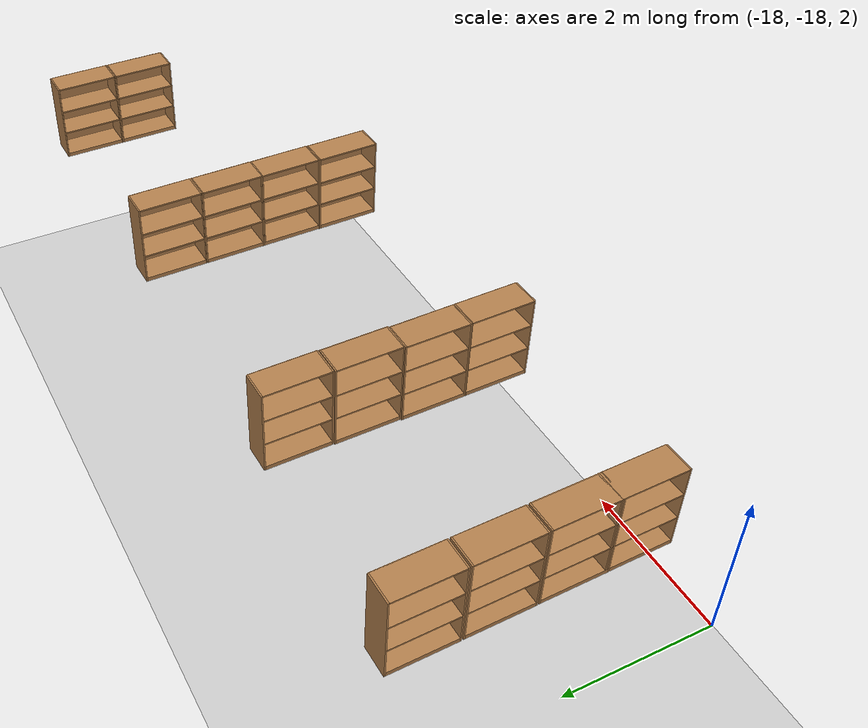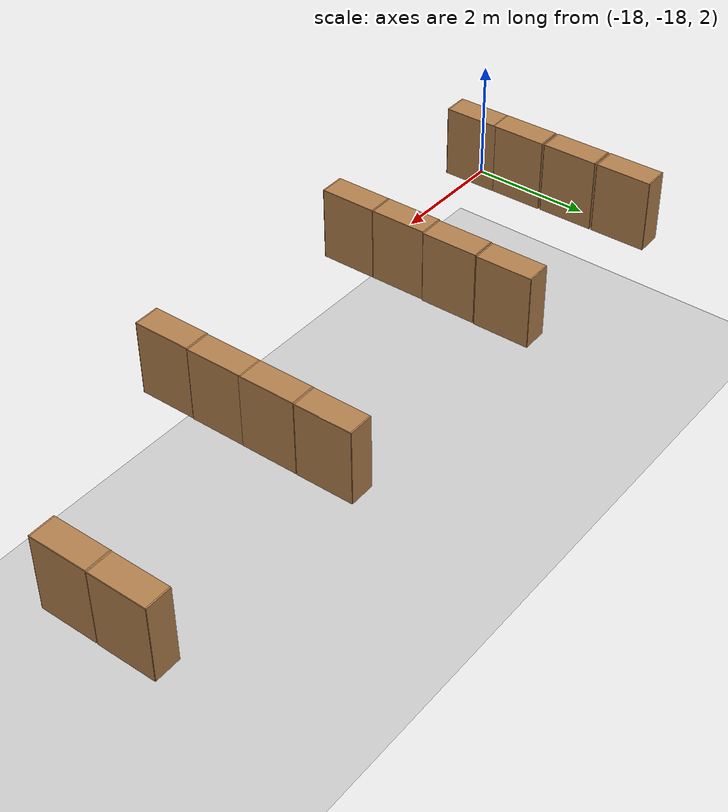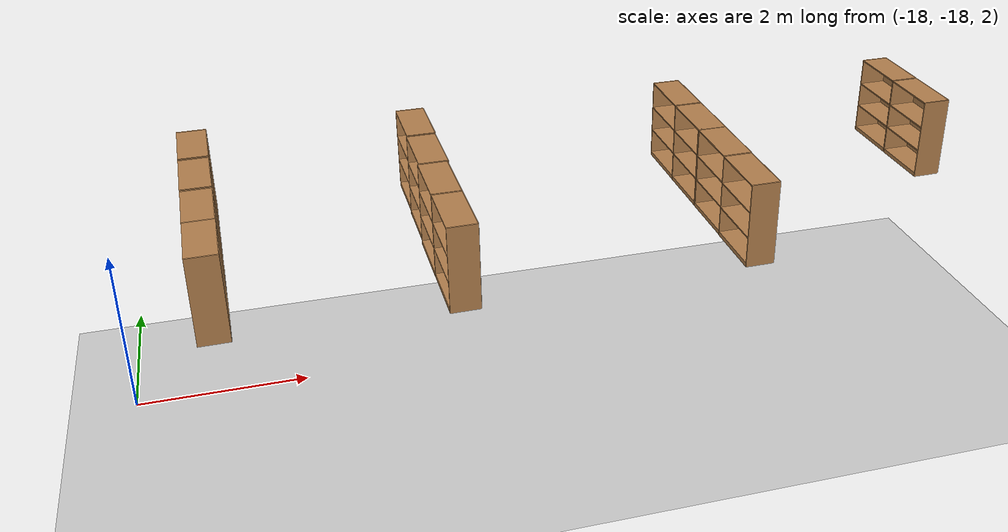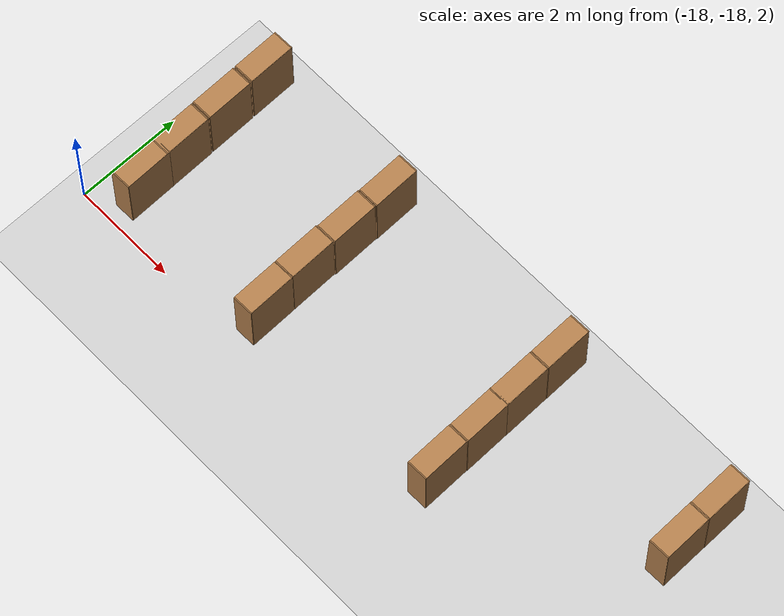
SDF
<sdf version="1.6">
 <world name="default">
  <model name="ground_plane">
   <static>1</static>
   <link name="link">
    <collision name="collision">
     <geometry><plane><normal>0 0 1</normal><size>100 100</size></plane></geometry>
     <surface><friction><ode><mu>100</mu><mu2>50</mu2></ode></friction></surface>
    </collision>
    <visual name="visual">
     <cast_shadows>0</cast_shadows>
     <geometry><plane><normal>0 0 1</normal><size>100 100</size></plane></geometry>
     <material>
      <script><uri>file://media/materials/scripts/gazebo.material</uri><name>Gazebo/Grey</name></script>
     </material>
    </visual>
   </link>
  </model>
  <model name="bookshelf_clone_clone">
   <static>1</static>
   <link name="link">
    <inertial><mass>1</mass></inertial>
    <collision name="back">
     <pose>0 0.005 0.6 0 -0 0</pose>
     <geometry><box><size>0.9 0.01 1.2</size></box></geometry>
    </collision>
    <visual name="visual1">
     <pose>0 0.005 0.6 0 -0 0</pose>
     <geometry><box><size>0.9 0.01 1.2</size></box></geometry>
     <material>
      <script><uri>file://media/materials/scripts/gazebo.material</uri><name>Gazebo/Wood</name></script>
     </material>
    </visual>
    <collision name="left_side">
     <pose>0.45 -0.195 0.6 0 -0 0</pose>
     <geometry><box><size>0.02 0.4 1.2</size></box></geometry>
    </collision>
    <visual name="visual2">
     <pose>0.45 -0.195 0.6 0 -0 0</pose>
     <geometry><box><size>0.02 0.4 1.2</size></box></geometry>
     <material>
      <script><uri>file://media/materials/scripts/gazebo.material</uri><name>Gazebo/Wood</name></script>
     </material>
    </visual>
    <collision name="right_side">
     <pose>-0.45 -0.195 0.6 0 -0 0</pose>
     <geometry><box><size>0.02 0.4 1.2</size></box></geometry>
    </collision>
    <visual name="visual3">
     <pose>-0.45 -0.195 0.6 0 -0 0</pose>
     <geometry><box><size>0.02 0.4 1.2</size></box></geometry>
     <material>
      <script><uri>file://media/materials/scripts/gazebo.material</uri><name>Gazebo/Wood</name></script>
     </material>
    </visual>
    <collision name="bottom">
     <pose>0 -0.195 0.03 0 -0 0</pose>
     <geometry><box><size>0.88 0.4 0.06</size></box></geometry>
    </collision>
    <visual name="visual4">
     <pose>0 -0.195 0.03 0 -0 0</pose>
     <geometry><box><size>0.88 0.4 0.06</size></box></geometry>
     <material>
      <script><uri>file://media/materials/scripts/gazebo.material</uri><name>Gazebo/Wood</name></script>
     </material>
    </visual>
    <collision name="top">
     <pose>0 -0.195 1.19 0 -0 0</pose>
     <geometry><box><size>0.88 0.4 0.02</size></box></geometry>
    </collision>
    <visual name="visual5">
     <pose>0 -0.195 1.19 0 -0 0</pose>
     <geometry><box><size>0.88 0.4 0.02</size></box></geometry>
     <material>
      <script><uri>file://media/materials/scripts/gazebo.material</uri><name>Gazebo/Wood</name></script>
     </material>
    </visual>
    <collision name="low_shelf">
     <pose>0 -0.195 0.43 0 -0 0</pose>
     <geometry><box><size>0.88 0.4 0.02</size></box></geometry>
    </collision>
    <visual name="visual6">
     <pose>0 -0.195 0.43 0 -0 0</pose>
     <geometry><box><size>0.88 0.4 0.02</size></box></geometry>
     <material>
      <script><uri>file://media/materials/scripts/gazebo.material</uri><name>Gazebo/Wood</name></script>
     </material>
    </visual>
    <collision name="high_shelf">
     <pose>0 -0.195 0.8 0 -0 0</pose>
     <geometry><box><size>0.88 0.4 0.02</size></box></geometry>
    </collision>
    <visual name="visual7">
     <pose>0 -0.195 0.8 0 -0 0</pose>
     <geometry><box><size>0.88 0.4 0.02</size></box></geometry>
     <material>
      <script><uri>file://media/materials/scripts/gazebo.material</uri><name>Gazebo/Wood</name></script>
     </material>
    </visual>
    <enable_wind>1</enable_wind>
   </link>
   <pose>-13.8416 -14.7855 2.61718 0 0 -1.55468</pose>
   <enable_wind>1</enable_wind>
  </model>
  <model name="bookshelf_clone_clone_clone">
   <static>1</static>
   <link name="link">
    <inertial><mass>1</mass></inertial>
    <collision name="back">
     <pose>0 0.005 0.6 0 -0 0</pose>
     <geometry><box><size>0.9 0.01 1.2</size></box></geometry>
    </collision>
    <visual name="visual1">
     <pose>0 0.005 0.6 0 -0 0</pose>
     <geometry><box><size>0.9 0.01 1.2</size></box></geometry>
     <material>
      <script><uri>file://media/materials/scripts/gazebo.material</uri><name>Gazebo/Wood</name></script>
     </material>
    </visual>
    <collision name="left_side">
     <pose>0.45 -0.195 0.6 0 -0 0</pose>
     <geometry><box><size>0.02 0.4 1.2</size></box></geometry>
    </collision>
    <visual name="visual2">
     <pose>0.45 -0.195 0.6 0 -0 0</pose>
     <geometry><box><size>0.02 0.4 1.2</size></box></geometry>
     <material>
      <script><uri>file://media/materials/scripts/gazebo.material</uri><name>Gazebo/Wood</name></script>
     </material>
    </visual>
    <collision name="right_side">
     <pose>-0.45 -0.195 0.6 0 -0 0</pose>
     <geometry><box><size>0.02 0.4 1.2</size></box></geometry>
    </collision>
    <visual name="visual3">
     <pose>-0.45 -0.195 0.6 0 -0 0</pose>
     <geometry><box><size>0.02 0.4 1.2</size></box></geometry>
     <material>
      <script><uri>file://media/materials/scripts/gazebo.material</uri><name>Gazebo/Wood</name></script>
     </material>
    </visual>
    <collision name="bottom">
     <pose>0 -0.195 0.03 0 -0 0</pose>
     <geometry><box><size>0.88 0.4 0.06</size></box></geometry>
    </collision>
    <visual name="visual4">
     <pose>0 -0.195 0.03 0 -0 0</pose>
     <geometry><box><size>0.88 0.4 0.06</size></box></geometry>
     <material>
      <script><uri>file://media/materials/scripts/gazebo.material</uri><name>Gazebo/Wood</name></script>
     </material>
    </visual>
    <collision name="top">
     <pose>0 -0.195 1.19 0 -0 0</pose>
     <geometry><box><size>0.88 0.4 0.02</size></box></geometry>
    </collision>
    <visual name="visual5">
     <pose>0 -0.195 1.19 0 -0 0</pose>
     <geometry><box><size>0.88 0.4 0.02</size></box></geometry>
     <material>
      <script><uri>file://media/materials/scripts/gazebo.material</uri><name>Gazebo/Wood</name></script>
     </material>
    </visual>
    <collision name="low_shelf">
     <pose>0 -0.195 0.43 0 -0 0</pose>
     <geometry><box><size>0.88 0.4 0.02</size></box></geometry>
    </collision>
    <visual name="visual6">
     <pose>0 -0.195 0.43 0 -0 0</pose>
     <geometry><box><size>0.88 0.4 0.02</size></box></geometry>
     <material>
      <script><uri>file://media/materials/scripts/gazebo.material</uri><name>Gazebo/Wood</name></script>
     </material>
    </visual>
    <collision name="high_shelf">
     <pose>0 -0.195 0.8 0 -0 0</pose>
     <geometry><box><size>0.88 0.4 0.02</size></box></geometry>
    </collision>
    <visual name="visual7">
     <pose>0 -0.195 0.8 0 -0 0</pose>
     <geometry><box><size>0.88 0.4 0.02</size></box></geometry>
     <material>
      <script><uri>file://media/materials/scripts/gazebo.material</uri><name>Gazebo/Wood</name></script>
     </material>
    </visual>
    <enable_wind>1</enable_wind>
   </link>
   <pose>-13.8378 -15.7137 2.61718 0 0 -1.55468</pose>
   <enable_wind>1</enable_wind>
  </model>
  <model name="bookshelf_clone_clone_clone_0">
   <static>1</static>
   <link name="link">
    <inertial><mass>1</mass></inertial>
    <collision name="back">
     <pose>0 0.005 0.6 0 -0 0</pose>
     <geometry><box><size>0.9 0.01 1.2</size></box></geometry>
    </collision>
    <visual name="visual1">
     <pose>0 0.005 0.6 0 -0 0</pose>
     <geometry><box><size>0.9 0.01 1.2</size></box></geometry>
     <material>
      <script><uri>file://media/materials/scripts/gazebo.material</uri><name>Gazebo/Wood</name></script>
     </material>
    </visual>
    <collision name="left_side">
     <pose>0.45 -0.195 0.6 0 -0 0</pose>
     <geometry><box><size>0.02 0.4 1.2</size></box></geometry>
    </collision>
    <visual name="visual2">
     <pose>0.45 -0.195 0.6 0 -0 0</pose>
     <geometry><box><size>0.02 0.4 1.2</size></box></geometry>
     <material>
      <script><uri>file://media/materials/scripts/gazebo.material</uri><name>Gazebo/Wood</name></script>
     </material>
    </visual>
    <collision name="right_side">
     <pose>-0.45 -0.195 0.6 0 -0 0</pose>
     <geometry><box><size>0.02 0.4 1.2</size></box></geometry>
    </collision>
    <visual name="visual3">
     <pose>-0.45 -0.195 0.6 0 -0 0</pose>
     <geometry><box><size>0.02 0.4 1.2</size></box></geometry>
     <material>
      <script><uri>file://media/materials/scripts/gazebo.material</uri><name>Gazebo/Wood</name></script>
     </material>
    </visual>
    <collision name="bottom">
     <pose>0 -0.195 0.03 0 -0 0</pose>
     <geometry><box><size>0.88 0.4 0.06</size></box></geometry>
    </collision>
    <visual name="visual4">
     <pose>0 -0.195 0.03 0 -0 0</pose>
     <geometry><box><size>0.88 0.4 0.06</size></box></geometry>
     <material>
      <script><uri>file://media/materials/scripts/gazebo.material</uri><name>Gazebo/Wood</name></script>
     </material>
    </visual>
    <collision name="top">
     <pose>0 -0.195 1.19 0 -0 0</pose>
     <geometry><box><size>0.88 0.4 0.02</size></box></geometry>
    </collision>
    <visual name="visual5">
     <pose>0 -0.195 1.19 0 -0 0</pose>
     <geometry><box><size>0.88 0.4 0.02</size></box></geometry>
     <material>
      <script><uri>file://media/materials/scripts/gazebo.material</uri><name>Gazebo/Wood</name></script>
     </material>
    </visual>
    <collision name="low_shelf">
     <pose>0 -0.195 0.43 0 -0 0</pose>
     <geometry><box><size>0.88 0.4 0.02</size></box></geometry>
    </collision>
    <visual name="visual6">
     <pose>0 -0.195 0.43 0 -0 0</pose>
     <geometry><box><size>0.88 0.4 0.02</size></box></geometry>
     <material>
      <script><uri>file://media/materials/scripts/gazebo.material</uri><name>Gazebo/Wood</name></script>
     </material>
    </visual>
    <collision name="high_shelf">
     <pose>0 -0.195 0.8 0 -0 0</pose>
     <geometry><box><size>0.88 0.4 0.02</size></box></geometry>
    </collision>
    <visual name="visual7">
     <pose>0 -0.195 0.8 0 -0 0</pose>
     <geometry><box><size>0.88 0.4 0.02</size></box></geometry>
     <material>
      <script><uri>file://media/materials/scripts/gazebo.material</uri><name>Gazebo/Wood</name></script>
     </material>
    </visual>
    <enable_wind>1</enable_wind>
   </link>
   <pose>-13.8408 -16.629 2.61718 0 0 -1.55468</pose>
   <enable_wind>1</enable_wind>
  </model>
  <model name="bookshelf_clone_clone_clone_1">
   <static>1</static>
   <link name="link">
    <inertial><mass>1</mass></inertial>
    <collision name="back">
     <pose>0 0.005 0.6 0 -0 0</pose>
     <geometry><box><size>0.9 0.01 1.2</size></box></geometry>
    </collision>
    <visual name="visual1">
     <pose>0 0.005 0.6 0 -0 0</pose>
     <geometry><box><size>0.9 0.01 1.2</size></box></geometry>
     <material>
      <script><uri>file://media/materials/scripts/gazebo.material</uri><name>Gazebo/Wood</name></script>
     </material>
    </visual>
    <collision name="left_side">
     <pose>0.45 -0.195 0.6 0 -0 0</pose>
     <geometry><box><size>0.02 0.4 1.2</size></box></geometry>
    </collision>
    <visual name="visual2">
     <pose>0.45 -0.195 0.6 0 -0 0</pose>
     <geometry><box><size>0.02 0.4 1.2</size></box></geometry>
     <material>
      <script><uri>file://media/materials/scripts/gazebo.material</uri><name>Gazebo/Wood</name></script>
     </material>
    </visual>
    <collision name="right_side">
     <pose>-0.45 -0.195 0.6 0 -0 0</pose>
     <geometry><box><size>0.02 0.4 1.2</size></box></geometry>
    </collision>
    <visual name="visual3">
     <pose>-0.45 -0.195 0.6 0 -0 0</pose>
     <geometry><box><size>0.02 0.4 1.2</size></box></geometry>
     <material>
      <script><uri>file://media/materials/scripts/gazebo.material</uri><name>Gazebo/Wood</name></script>
     </material>
    </visual>
    <collision name="bottom">
     <pose>0 -0.195 0.03 0 -0 0</pose>
     <geometry><box><size>0.88 0.4 0.06</size></box></geometry>
    </collision>
    <visual name="visual4">
     <pose>0 -0.195 0.03 0 -0 0</pose>
     <geometry><box><size>0.88 0.4 0.06</size></box></geometry>
     <material>
      <script><uri>file://media/materials/scripts/gazebo.material</uri><name>Gazebo/Wood</name></script>
     </material>
    </visual>
    <collision name="top">
     <pose>0 -0.195 1.19 0 -0 0</pose>
     <geometry><box><size>0.88 0.4 0.02</size></box></geometry>
    </collision>
    <visual name="visual5">
     <pose>0 -0.195 1.19 0 -0 0</pose>
     <geometry><box><size>0.88 0.4 0.02</size></box></geometry>
     <material>
      <script><uri>file://media/materials/scripts/gazebo.material</uri><name>Gazebo/Wood</name></script>
     </material>
    </visual>
    <collision name="low_shelf">
     <pose>0 -0.195 0.43 0 -0 0</pose>
     <geometry><box><size>0.88 0.4 0.02</size></box></geometry>
    </collision>
    <visual name="visual6">
     <pose>0 -0.195 0.43 0 -0 0</pose>
     <geometry><box><size>0.88 0.4 0.02</size></box></geometry>
     <material>
      <script><uri>file://media/materials/scripts/gazebo.material</uri><name>Gazebo/Wood</name></script>
     </material>
    </visual>
    <collision name="high_shelf">
     <pose>0 -0.195 0.8 0 -0 0</pose>
     <geometry><box><size>0.88 0.4 0.02</size></box></geometry>
    </collision>
    <visual name="visual7">
     <pose>0 -0.195 0.8 0 -0 0</pose>
     <geometry><box><size>0.88 0.4 0.02</size></box></geometry>
     <material>
      <script><uri>file://media/materials/scripts/gazebo.material</uri><name>Gazebo/Wood</name></script>
     </material>
    </visual>
    <enable_wind>1</enable_wind>
   </link>
   <pose>-13.825 -17.5402 2.61718 0 0 -1.55468</pose>
   <enable_wind>1</enable_wind>
  </model>
  <model name="bookshelf_clone_clone_clone_5">
   <static>1</static>
   <link name="link">
    <inertial><mass>1</mass></inertial>
    <collision name="back">
     <pose>0 0.005 0.6 0 -0 0</pose>
     <geometry><box><size>0.9 0.01 1.2</size></box></geometry>
    </collision>
    <visual name="visual1">
     <pose>0 0.005 0.6 0 -0 0</pose>
     <geometry><box><size>0.9 0.01 1.2</size></box></geometry>
     <material>
      <script><uri>file://media/materials/scripts/gazebo.material</uri><name>Gazebo/Wood</name></script>
     </material>
    </visual>
    <collision name="left_side">
     <pose>0.45 -0.195 0.6 0 -0 0</pose>
     <geometry><box><size>0.02 0.4 1.2</size></box></geometry>
    </collision>
    <visual name="visual2">
     <pose>0.45 -0.195 0.6 0 -0 0</pose>
     <geometry><box><size>0.02 0.4 1.2</size></box></geometry>
     <material>
      <script><uri>file://media/materials/scripts/gazebo.material</uri><name>Gazebo/Wood</name></script>
     </material>
    </visual>
    <collision name="right_side">
     <pose>-0.45 -0.195 0.6 0 -0 0</pose>
     <geometry><box><size>0.02 0.4 1.2</size></box></geometry>
    </collision>
    <visual name="visual3">
     <pose>-0.45 -0.195 0.6 0 -0 0</pose>
     <geometry><box><size>0.02 0.4 1.2</size></box></geometry>
     <material>
      <script><uri>file://media/materials/scripts/gazebo.material</uri><name>Gazebo/Wood</name></script>
     </material>
    </visual>
    <collision name="bottom">
     <pose>0 -0.195 0.03 0 -0 0</pose>
     <geometry><box><size>0.88 0.4 0.06</size></box></geometry>
    </collision>
    <visual name="visual4">
     <pose>0 -0.195 0.03 0 -0 0</pose>
     <geometry><box><size>0.88 0.4 0.06</size></box></geometry>
     <material>
      <script><uri>file://media/materials/scripts/gazebo.material</uri><name>Gazebo/Wood</name></script>
     </material>
    </visual>
    <collision name="top">
     <pose>0 -0.195 1.19 0 -0 0</pose>
     <geometry><box><size>0.88 0.4 0.02</size></box></geometry>
    </collision>
    <visual name="visual5">
     <pose>0 -0.195 1.19 0 -0 0</pose>
     <geometry><box><size>0.88 0.4 0.02</size></box></geometry>
     <material>
      <script><uri>file://media/materials/scripts/gazebo.material</uri><name>Gazebo/Wood</name></script>
     </material>
    </visual>
    <collision name="low_shelf">
     <pose>0 -0.195 0.43 0 -0 0</pose>
     <geometry><box><size>0.88 0.4 0.02</size></box></geometry>
    </collision>
    <visual name="visual6">
     <pose>0 -0.195 0.43 0 -0 0</pose>
     <geometry><box><size>0.88 0.4 0.02</size></box></geometry>
     <material>
      <script><uri>file://media/materials/scripts/gazebo.material</uri><name>Gazebo/Wood</name></script>
     </material>
    </visual>
    <collision name="high_shelf">
     <pose>0 -0.195 0.8 0 -0 0</pose>
     <geometry><box><size>0.88 0.4 0.02</size></box></geometry>
    </collision>
    <visual name="visual7">
     <pose>0 -0.195 0.8 0 -0 0</pose>
     <geometry><box><size>0.88 0.4 0.02</size></box></geometry>
     <material>
      <script><uri>file://media/materials/scripts/gazebo.material</uri><name>Gazebo/Wood</name></script>
     </material>
    </visual>
    <enable_wind>1</enable_wind>
   </link>
   <pose>-9.89359 -14.7818 2.61718 0 0 -1.55468</pose>
   <enable_wind>1</enable_wind>
  </model>
  <model name="bookshelf_clone_clone_clone_6">
   <static>1</static>
   <link name="link">
    <inertial><mass>1</mass></inertial>
    <collision name="back">
     <pose>0 0.005 0.6 0 -0 0</pose>
     <geometry><box><size>0.9 0.01 1.2</size></box></geometry>
    </collision>
    <visual name="visual1">
     <pose>0 0.005 0.6 0 -0 0</pose>
     <geometry><box><size>0.9 0.01 1.2</size></box></geometry>
     <material>
      <script><uri>file://media/materials/scripts/gazebo.material</uri><name>Gazebo/Wood</name></script>
     </material>
    </visual>
    <collision name="left_side">
     <pose>0.45 -0.195 0.6 0 -0 0</pose>
     <geometry><box><size>0.02 0.4 1.2</size></box></geometry>
    </collision>
    <visual name="visual2">
     <pose>0.45 -0.195 0.6 0 -0 0</pose>
     <geometry><box><size>0.02 0.4 1.2</size></box></geometry>
     <material>
      <script><uri>file://media/materials/scripts/gazebo.material</uri><name>Gazebo/Wood</name></script>
     </material>
    </visual>
    <collision name="right_side">
     <pose>-0.45 -0.195 0.6 0 -0 0</pose>
     <geometry><box><size>0.02 0.4 1.2</size></box></geometry>
    </collision>
    <visual name="visual3">
     <pose>-0.45 -0.195 0.6 0 -0 0</pose>
     <geometry><box><size>0.02 0.4 1.2</size></box></geometry>
     <material>
      <script><uri>file://media/materials/scripts/gazebo.material</uri><name>Gazebo/Wood</name></script>
     </material>
    </visual>
    <collision name="bottom">
     <pose>0 -0.195 0.03 0 -0 0</pose>
     <geometry><box><size>0.88 0.4 0.06</size></box></geometry>
    </collision>
    <visual name="visual4">
     <pose>0 -0.195 0.03 0 -0 0</pose>
     <geometry><box><size>0.88 0.4 0.06</size></box></geometry>
     <material>
      <script><uri>file://media/materials/scripts/gazebo.material</uri><name>Gazebo/Wood</name></script>
     </material>
    </visual>
    <collision name="top">
     <pose>0 -0.195 1.19 0 -0 0</pose>
     <geometry><box><size>0.88 0.4 0.02</size></box></geometry>
    </collision>
    <visual name="visual5">
     <pose>0 -0.195 1.19 0 -0 0</pose>
     <geometry><box><size>0.88 0.4 0.02</size></box></geometry>
     <material>
      <script><uri>file://media/materials/scripts/gazebo.material</uri><name>Gazebo/Wood</name></script>
     </material>
    </visual>
    <collision name="low_shelf">
     <pose>0 -0.195 0.43 0 -0 0</pose>
     <geometry><box><size>0.88 0.4 0.02</size></box></geometry>
    </collision>
    <visual name="visual6">
     <pose>0 -0.195 0.43 0 -0 0</pose>
     <geometry><box><size>0.88 0.4 0.02</size></box></geometry>
     <material>
      <script><uri>file://media/materials/scripts/gazebo.material</uri><name>Gazebo/Wood</name></script>
     </material>
    </visual>
    <collision name="high_shelf">
     <pose>0 -0.195 0.8 0 -0 0</pose>
     <geometry><box><size>0.88 0.4 0.02</size></box></geometry>
    </collision>
    <visual name="visual7">
     <pose>0 -0.195 0.8 0 -0 0</pose>
     <geometry><box><size>0.88 0.4 0.02</size></box></geometry>
     <material>
      <script><uri>file://media/materials/scripts/gazebo.material</uri><name>Gazebo/Wood</name></script>
     </material>
    </visual>
    <enable_wind>1</enable_wind>
   </link>
   <pose>-9.8819 -15.6975 2.61718 0 0 -1.55468</pose>
   <enable_wind>1</enable_wind>
  </model>
  <model name="bookshelf_clone_clone_clone_7">
   <static>1</static>
   <link name="link">
    <inertial><mass>1</mass></inertial>
    <collision name="back">
     <pose>0 0.005 0.6 0 -0 0</pose>
     <geometry><box><size>0.9 0.01 1.2</size></box></geometry>
    </collision>
    <visual name="visual1">
     <pose>0 0.005 0.6 0 -0 0</pose>
     <geometry><box><size>0.9 0.01 1.2</size></box></geometry>
     <material>
      <script><uri>file://media/materials/scripts/gazebo.material</uri><name>Gazebo/Wood</name></script>
     </material>
    </visual>
    <collision name="left_side">
     <pose>0.45 -0.195 0.6 0 -0 0</pose>
     <geometry><box><size>0.02 0.4 1.2</size></box></geometry>
    </collision>
    <visual name="visual2">
     <pose>0.45 -0.195 0.6 0 -0 0</pose>
     <geometry><box><size>0.02 0.4 1.2</size></box></geometry>
     <material>
      <script><uri>file://media/materials/scripts/gazebo.material</uri><name>Gazebo/Wood</name></script>
     </material>
    </visual>
    <collision name="right_side">
     <pose>-0.45 -0.195 0.6 0 -0 0</pose>
     <geometry><box><size>0.02 0.4 1.2</size></box></geometry>
    </collision>
    <visual name="visual3">
     <pose>-0.45 -0.195 0.6 0 -0 0</pose>
     <geometry><box><size>0.02 0.4 1.2</size></box></geometry>
     <material>
      <script><uri>file://media/materials/scripts/gazebo.material</uri><name>Gazebo/Wood</name></script>
     </material>
    </visual>
    <collision name="bottom">
     <pose>0 -0.195 0.03 0 -0 0</pose>
     <geometry><box><size>0.88 0.4 0.06</size></box></geometry>
    </collision>
    <visual name="visual4">
     <pose>0 -0.195 0.03 0 -0 0</pose>
     <geometry><box><size>0.88 0.4 0.06</size></box></geometry>
     <material>
      <script><uri>file://media/materials/scripts/gazebo.material</uri><name>Gazebo/Wood</name></script>
     </material>
    </visual>
    <collision name="top">
     <pose>0 -0.195 1.19 0 -0 0</pose>
     <geometry><box><size>0.88 0.4 0.02</size></box></geometry>
    </collision>
    <visual name="visual5">
     <pose>0 -0.195 1.19 0 -0 0</pose>
     <geometry><box><size>0.88 0.4 0.02</size></box></geometry>
     <material>
      <script><uri>file://media/materials/scripts/gazebo.material</uri><name>Gazebo/Wood</name></script>
     </material>
    </visual>
    <collision name="low_shelf">
     <pose>0 -0.195 0.43 0 -0 0</pose>
     <geometry><box><size>0.88 0.4 0.02</size></box></geometry>
    </collision>
    <visual name="visual6">
     <pose>0 -0.195 0.43 0 -0 0</pose>
     <geometry><box><size>0.88 0.4 0.02</size></box></geometry>
     <material>
      <script><uri>file://media/materials/scripts/gazebo.material</uri><name>Gazebo/Wood</name></script>
     </material>
    </visual>
    <collision name="high_shelf">
     <pose>0 -0.195 0.8 0 -0 0</pose>
     <geometry><box><size>0.88 0.4 0.02</size></box></geometry>
    </collision>
    <visual name="visual7">
     <pose>0 -0.195 0.8 0 -0 0</pose>
     <geometry><box><size>0.88 0.4 0.02</size></box></geometry>
     <material>
      <script><uri>file://media/materials/scripts/gazebo.material</uri><name>Gazebo/Wood</name></script>
     </material>
    </visual>
    <enable_wind>1</enable_wind>
   </link>
   <pose>-9.87057 -16.5749 2.61718 0 0 -1.55468</pose>
   <enable_wind>1</enable_wind>
  </model>
  <model name="bookshelf_clone_clone_clone_8">
   <static>1</static>
   <link name="link">
    <inertial><mass>1</mass></inertial>
    <collision name="back">
     <pose>0 0.005 0.6 0 -0 0</pose>
     <geometry><box><size>0.9 0.01 1.2</size></box></geometry>
    </collision>
    <visual name="visual1">
     <pose>0 0.005 0.6 0 -0 0</pose>
     <geometry><box><size>0.9 0.01 1.2</size></box></geometry>
     <material>
      <script><uri>file://media/materials/scripts/gazebo.material</uri><name>Gazebo/Wood</name></script>
     </material>
    </visual>
    <collision name="left_side">
     <pose>0.45 -0.195 0.6 0 -0 0</pose>
     <geometry><box><size>0.02 0.4 1.2</size></box></geometry>
    </collision>
    <visual name="visual2">
     <pose>0.45 -0.195 0.6 0 -0 0</pose>
     <geometry><box><size>0.02 0.4 1.2</size></box></geometry>
     <material>
      <script><uri>file://media/materials/scripts/gazebo.material</uri><name>Gazebo/Wood</name></script>
     </material>
    </visual>
    <collision name="right_side">
     <pose>-0.45 -0.195 0.6 0 -0 0</pose>
     <geometry><box><size>0.02 0.4 1.2</size></box></geometry>
    </collision>
    <visual name="visual3">
     <pose>-0.45 -0.195 0.6 0 -0 0</pose>
     <geometry><box><size>0.02 0.4 1.2</size></box></geometry>
     <material>
      <script><uri>file://media/materials/scripts/gazebo.material</uri><name>Gazebo/Wood</name></script>
     </material>
    </visual>
    <collision name="bottom">
     <pose>0 -0.195 0.03 0 -0 0</pose>
     <geometry><box><size>0.88 0.4 0.06</size></box></geometry>
    </collision>
    <visual name="visual4">
     <pose>0 -0.195 0.03 0 -0 0</pose>
     <geometry><box><size>0.88 0.4 0.06</size></box></geometry>
     <material>
      <script><uri>file://media/materials/scripts/gazebo.material</uri><name>Gazebo/Wood</name></script>
     </material>
    </visual>
    <collision name="top">
     <pose>0 -0.195 1.19 0 -0 0</pose>
     <geometry><box><size>0.88 0.4 0.02</size></box></geometry>
    </collision>
    <visual name="visual5">
     <pose>0 -0.195 1.19 0 -0 0</pose>
     <geometry><box><size>0.88 0.4 0.02</size></box></geometry>
     <material>
      <script><uri>file://media/materials/scripts/gazebo.material</uri><name>Gazebo/Wood</name></script>
     </material>
    </visual>
    <collision name="low_shelf">
     <pose>0 -0.195 0.43 0 -0 0</pose>
     <geometry><box><size>0.88 0.4 0.02</size></box></geometry>
    </collision>
    <visual name="visual6">
     <pose>0 -0.195 0.43 0 -0 0</pose>
     <geometry><box><size>0.88 0.4 0.02</size></box></geometry>
     <material>
      <script><uri>file://media/materials/scripts/gazebo.material</uri><name>Gazebo/Wood</name></script>
     </material>
    </visual>
    <collision name="high_shelf">
     <pose>0 -0.195 0.8 0 -0 0</pose>
     <geometry><box><size>0.88 0.4 0.02</size></box></geometry>
    </collision>
    <visual name="visual7">
     <pose>0 -0.195 0.8 0 -0 0</pose>
     <geometry><box><size>0.88 0.4 0.02</size></box></geometry>
     <material>
      <script><uri>file://media/materials/scripts/gazebo.material</uri><name>Gazebo/Wood</name></script>
     </material>
    </visual>
    <enable_wind>1</enable_wind>
   </link>
   <pose>-9.86232 -17.4895 2.61718 0 0 -1.55468</pose>
   <enable_wind>1</enable_wind>
  </model>
  <model name="bookshelf_clone_clone_clone_12">
   <static>1</static>
   <link name="link">
    <inertial><mass>1</mass></inertial>
    <collision name="back">
     <pose>0 0.005 0.6 0 -0 0</pose>
     <geometry><box><size>0.9 0.01 1.2</size></box></geometry>
    </collision>
    <visual name="visual1">
     <pose>0 0.005 0.6 0 -0 0</pose>
     <geometry><box><size>0.9 0.01 1.2</size></box></geometry>
     <material>
      <script><uri>file://media/materials/scripts/gazebo.material</uri><name>Gazebo/Wood</name></script>
     </material>
    </visual>
    <collision name="left_side">
     <pose>0.45 -0.195 0.6 0 -0 0</pose>
     <geometry><box><size>0.02 0.4 1.2</size></box></geometry>
    </collision>
    <visual name="visual2">
     <pose>0.45 -0.195 0.6 0 -0 0</pose>
     <geometry><box><size>0.02 0.4 1.2</size></box></geometry>
     <material>
      <script><uri>file://media/materials/scripts/gazebo.material</uri><name>Gazebo/Wood</name></script>
     </material>
    </visual>
    <collision name="right_side">
     <pose>-0.45 -0.195 0.6 0 -0 0</pose>
     <geometry><box><size>0.02 0.4 1.2</size></box></geometry>
    </collision>
    <visual name="visual3">
     <pose>-0.45 -0.195 0.6 0 -0 0</pose>
     <geometry><box><size>0.02 0.4 1.2</size></box></geometry>
     <material>
      <script><uri>file://media/materials/scripts/gazebo.material</uri><name>Gazebo/Wood</name></script>
     </material>
    </visual>
    <collision name="bottom">
     <pose>0 -0.195 0.03 0 -0 0</pose>
     <geometry><box><size>0.88 0.4 0.06</size></box></geometry>
    </collision>
    <visual name="visual4">
     <pose>0 -0.195 0.03 0 -0 0</pose>
     <geometry><box><size>0.88 0.4 0.06</size></box></geometry>
     <material>
      <script><uri>file://media/materials/scripts/gazebo.material</uri><name>Gazebo/Wood</name></script>
     </material>
    </visual>
    <collision name="top">
     <pose>0 -0.195 1.19 0 -0 0</pose>
     <geometry><box><size>0.88 0.4 0.02</size></box></geometry>
    </collision>
    <visual name="visual5">
     <pose>0 -0.195 1.19 0 -0 0</pose>
     <geometry><box><size>0.88 0.4 0.02</size></box></geometry>
     <material>
      <script><uri>file://media/materials/scripts/gazebo.material</uri><name>Gazebo/Wood</name></script>
     </material>
    </visual>
    <collision name="low_shelf">
     <pose>0 -0.195 0.43 0 -0 0</pose>
     <geometry><box><size>0.88 0.4 0.02</size></box></geometry>
    </collision>
    <visual name="visual6">
     <pose>0 -0.195 0.43 0 -0 0</pose>
     <geometry><box><size>0.88 0.4 0.02</size></box></geometry>
     <material>
      <script><uri>file://media/materials/scripts/gazebo.material</uri><name>Gazebo/Wood</name></script>
     </material>
    </visual>
    <collision name="high_shelf">
     <pose>0 -0.195 0.8 0 -0 0</pose>
     <geometry><box><size>0.88 0.4 0.02</size></box></geometry>
    </collision>
    <visual name="visual7">
     <pose>0 -0.195 0.8 0 -0 0</pose>
     <geometry><box><size>0.88 0.4 0.02</size></box></geometry>
     <material>
      <script><uri>file://media/materials/scripts/gazebo.material</uri><name>Gazebo/Wood</name></script>
     </material>
    </visual>
    <enable_wind>1</enable_wind>
   </link>
   <pose>-6.35006 -14.775 2.61718 0 0 -1.55468</pose>
   <enable_wind>1</enable_wind>
  </model>
  <model name="bookshelf_clone_clone_clone_13">
   <static>1</static>
   <link name="link">
    <inertial><mass>1</mass></inertial>
    <collision name="back">
     <pose>0 0.005 0.6 0 -0 0</pose>
     <geometry><box><size>0.9 0.01 1.2</size></box></geometry>
    </collision>
    <visual name="visual1">
     <pose>0 0.005 0.6 0 -0 0</pose>
     <geometry><box><size>0.9 0.01 1.2</size></box></geometry>
     <material>
      <script><uri>file://media/materials/scripts/gazebo.material</uri><name>Gazebo/Wood</name></script>
     </material>
    </visual>
    <collision name="left_side">
     <pose>0.45 -0.195 0.6 0 -0 0</pose>
     <geometry><box><size>0.02 0.4 1.2</size></box></geometry>
    </collision>
    <visual name="visual2">
     <pose>0.45 -0.195 0.6 0 -0 0</pose>
     <geometry><box><size>0.02 0.4 1.2</size></box></geometry>
     <material>
      <script><uri>file://media/materials/scripts/gazebo.material</uri><name>Gazebo/Wood</name></script>
     </material>
    </visual>
    <collision name="right_side">
     <pose>-0.45 -0.195 0.6 0 -0 0</pose>
     <geometry><box><size>0.02 0.4 1.2</size></box></geometry>
    </collision>
    <visual name="visual3">
     <pose>-0.45 -0.195 0.6 0 -0 0</pose>
     <geometry><box><size>0.02 0.4 1.2</size></box></geometry>
     <material>
      <script><uri>file://media/materials/scripts/gazebo.material</uri><name>Gazebo/Wood</name></script>
     </material>
    </visual>
    <collision name="bottom">
     <pose>0 -0.195 0.03 0 -0 0</pose>
     <geometry><box><size>0.88 0.4 0.06</size></box></geometry>
    </collision>
    <visual name="visual4">
     <pose>0 -0.195 0.03 0 -0 0</pose>
     <geometry><box><size>0.88 0.4 0.06</size></box></geometry>
     <material>
      <script><uri>file://media/materials/scripts/gazebo.material</uri><name>Gazebo/Wood</name></script>
     </material>
    </visual>
    <collision name="top">
     <pose>0 -0.195 1.19 0 -0 0</pose>
     <geometry><box><size>0.88 0.4 0.02</size></box></geometry>
    </collision>
    <visual name="visual5">
     <pose>0 -0.195 1.19 0 -0 0</pose>
     <geometry><box><size>0.88 0.4 0.02</size></box></geometry>
     <material>
      <script><uri>file://media/materials/scripts/gazebo.material</uri><name>Gazebo/Wood</name></script>
     </material>
    </visual>
    <collision name="low_shelf">
     <pose>0 -0.195 0.43 0 -0 0</pose>
     <geometry><box><size>0.88 0.4 0.02</size></box></geometry>
    </collision>
    <visual name="visual6">
     <pose>0 -0.195 0.43 0 -0 0</pose>
     <geometry><box><size>0.88 0.4 0.02</size></box></geometry>
     <material>
      <script><uri>file://media/materials/scripts/gazebo.material</uri><name>Gazebo/Wood</name></script>
     </material>
    </visual>
    <collision name="high_shelf">
     <pose>0 -0.195 0.8 0 -0 0</pose>
     <geometry><box><size>0.88 0.4 0.02</size></box></geometry>
    </collision>
    <visual name="visual7">
     <pose>0 -0.195 0.8 0 -0 0</pose>
     <geometry><box><size>0.88 0.4 0.02</size></box></geometry>
     <material>
      <script><uri>file://media/materials/scripts/gazebo.material</uri><name>Gazebo/Wood</name></script>
     </material>
    </visual>
    <enable_wind>1</enable_wind>
   </link>
   <pose>-6.33851 -15.6907 2.61718 0 0 -1.55468</pose>
   <enable_wind>1</enable_wind>
  </model>
  <model name="bookshelf_clone_2">
   <static>1</static>
   <link name="link">
    <inertial><mass>1</mass></inertial>
    <collision name="back">
     <pose>0 0.005 0.6 0 -0 0</pose>
     <geometry><box><size>0.9 0.01 1.2</size></box></geometry>
    </collision>
    <visual name="visual1">
     <pose>0 0.005 0.6 0 -0 0</pose>
     <geometry><box><size>0.9 0.01 1.2</size></box></geometry>
     <material>
      <script><uri>file://media/materials/scripts/gazebo.material</uri><name>Gazebo/Wood</name></script>
     </material>
    </visual>
    <collision name="left_side">
     <pose>0.45 -0.195 0.6 0 -0 0</pose>
     <geometry><box><size>0.02 0.4 1.2</size></box></geometry>
    </collision>
    <visual name="visual2">
     <pose>0.45 -0.195 0.6 0 -0 0</pose>
     <geometry><box><size>0.02 0.4 1.2</size></box></geometry>
     <material>
      <script><uri>file://media/materials/scripts/gazebo.material</uri><name>Gazebo/Wood</name></script>
     </material>
    </visual>
    <collision name="right_side">
     <pose>-0.45 -0.195 0.6 0 -0 0</pose>
     <geometry><box><size>0.02 0.4 1.2</size></box></geometry>
    </collision>
    <visual name="visual3">
     <pose>-0.45 -0.195 0.6 0 -0 0</pose>
     <geometry><box><size>0.02 0.4 1.2</size></box></geometry>
     <material>
      <script><uri>file://media/materials/scripts/gazebo.material</uri><name>Gazebo/Wood</name></script>
     </material>
    </visual>
    <collision name="bottom">
     <pose>0 -0.195 0.03 0 -0 0</pose>
     <geometry><box><size>0.88 0.4 0.06</size></box></geometry>
    </collision>
    <visual name="visual4">
     <pose>0 -0.195 0.03 0 -0 0</pose>
     <geometry><box><size>0.88 0.4 0.06</size></box></geometry>
     <material>
      <script><uri>file://media/materials/scripts/gazebo.material</uri><name>Gazebo/Wood</name></script>
     </material>
    </visual>
    <collision name="top">
     <pose>0 -0.195 1.19 0 -0 0</pose>
     <geometry><box><size>0.88 0.4 0.02</size></box></geometry>
    </collision>
    <visual name="visual5">
     <pose>0 -0.195 1.19 0 -0 0</pose>
     <geometry><box><size>0.88 0.4 0.02</size></box></geometry>
     <material>
      <script><uri>file://media/materials/scripts/gazebo.material</uri><name>Gazebo/Wood</name></script>
     </material>
    </visual>
    <collision name="low_shelf">
     <pose>0 -0.195 0.43 0 -0 0</pose>
     <geometry><box><size>0.88 0.4 0.02</size></box></geometry>
    </collision>
    <visual name="visual6">
     <pose>0 -0.195 0.43 0 -0 0</pose>
     <geometry><box><size>0.88 0.4 0.02</size></box></geometry>
     <material>
      <script><uri>file://media/materials/scripts/gazebo.material</uri><name>Gazebo/Wood</name></script>
     </material>
    </visual>
    <collision name="high_shelf">
     <pose>0 -0.195 0.8 0 -0 0</pose>
     <geometry><box><size>0.88 0.4 0.02</size></box></geometry>
    </collision>
    <visual name="visual7">
     <pose>0 -0.195 0.8 0 -0 0</pose>
     <geometry><box><size>0.88 0.4 0.02</size></box></geometry>
     <material>
      <script><uri>file://media/materials/scripts/gazebo.material</uri><name>Gazebo/Wood</name></script>
     </material>
    </visual>
    <enable_wind>1</enable_wind>
   </link>
   <pose>-16.895 -14.7057 2.61718 0 0 -1.55468</pose>
   <enable_wind>1</enable_wind>
  </model>
  <model name="bookshelf_clone_3">
   <static>1</static>
   <link name="link">
    <inertial><mass>1</mass></inertial>
    <collision name="back">
     <pose>0 0.005 0.6 0 -0 0</pose>
     <geometry><box><size>0.9 0.01 1.2</size></box></geometry>
    </collision>
    <visual name="visual1">
     <pose>0 0.005 0.6 0 -0 0</pose>
     <geometry><box><size>0.9 0.01 1.2</size></box></geometry>
     <material>
      <script><uri>file://media/materials/scripts/gazebo.material</uri><name>Gazebo/Wood</name></script>
     </material>
    </visual>
    <collision name="left_side">
     <pose>0.45 -0.195 0.6 0 -0 0</pose>
     <geometry><box><size>0.02 0.4 1.2</size></box></geometry>
    </collision>
    <visual name="visual2">
     <pose>0.45 -0.195 0.6 0 -0 0</pose>
     <geometry><box><size>0.02 0.4 1.2</size></box></geometry>
     <material>
      <script><uri>file://media/materials/scripts/gazebo.material</uri><name>Gazebo/Wood</name></script>
     </material>
    </visual>
    <collision name="right_side">
     <pose>-0.45 -0.195 0.6 0 -0 0</pose>
     <geometry><box><size>0.02 0.4 1.2</size></box></geometry>
    </collision>
    <visual name="visual3">
     <pose>-0.45 -0.195 0.6 0 -0 0</pose>
     <geometry><box><size>0.02 0.4 1.2</size></box></geometry>
     <material>
      <script><uri>file://media/materials/scripts/gazebo.material</uri><name>Gazebo/Wood</name></script>
     </material>
    </visual>
    <collision name="bottom">
     <pose>0 -0.195 0.03 0 -0 0</pose>
     <geometry><box><size>0.88 0.4 0.06</size></box></geometry>
    </collision>
    <visual name="visual4">
     <pose>0 -0.195 0.03 0 -0 0</pose>
     <geometry><box><size>0.88 0.4 0.06</size></box></geometry>
     <material>
      <script><uri>file://media/materials/scripts/gazebo.material</uri><name>Gazebo/Wood</name></script>
     </material>
    </visual>
    <collision name="top">
     <pose>0 -0.195 1.19 0 -0 0</pose>
     <geometry><box><size>0.88 0.4 0.02</size></box></geometry>
    </collision>
    <visual name="visual5">
     <pose>0 -0.195 1.19 0 -0 0</pose>
     <geometry><box><size>0.88 0.4 0.02</size></box></geometry>
     <material>
      <script><uri>file://media/materials/scripts/gazebo.material</uri><name>Gazebo/Wood</name></script>
     </material>
    </visual>
    <collision name="low_shelf">
     <pose>0 -0.195 0.43 0 -0 0</pose>
     <geometry><box><size>0.88 0.4 0.02</size></box></geometry>
    </collision>
    <visual name="visual6">
     <pose>0 -0.195 0.43 0 -0 0</pose>
     <geometry><box><size>0.88 0.4 0.02</size></box></geometry>
     <material>
      <script><uri>file://media/materials/scripts/gazebo.material</uri><name>Gazebo/Wood</name></script>
     </material>
    </visual>
    <collision name="high_shelf">
     <pose>0 -0.195 0.8 0 -0 0</pose>
     <geometry><box><size>0.88 0.4 0.02</size></box></geometry>
    </collision>
    <visual name="visual7">
     <pose>0 -0.195 0.8 0 -0 0</pose>
     <geometry><box><size>0.88 0.4 0.02</size></box></geometry>
     <material>
      <script><uri>file://media/materials/scripts/gazebo.material</uri><name>Gazebo/Wood</name></script>
     </material>
    </visual>
    <enable_wind>1</enable_wind>
   </link>
   <pose>-16.878 -15.6481 2.61718 0 0 -1.55468</pose>
   <enable_wind>1</enable_wind>
  </model>
  <model name="bookshelf_clone_4">
   <static>1</static>
   <link name="link">
    <inertial><mass>1</mass></inertial>
    <collision name="back">
     <pose>0 0.005 0.6 0 -0 0</pose>
     <geometry><box><size>0.9 0.01 1.2</size></box></geometry>
    </collision>
    <visual name="visual1">
     <pose>0 0.005 0.6 0 -0 0</pose>
     <geometry><box><size>0.9 0.01 1.2</size></box></geometry>
     <material>
      <script><uri>file://media/materials/scripts/gazebo.material</uri><name>Gazebo/Wood</name></script>
     </material>
    </visual>
    <collision name="left_side">
     <pose>0.45 -0.195 0.6 0 -0 0</pose>
     <geometry><box><size>0.02 0.4 1.2</size></box></geometry>
    </collision>
    <visual name="visual2">
     <pose>0.45 -0.195 0.6 0 -0 0</pose>
     <geometry><box><size>0.02 0.4 1.2</size></box></geometry>
     <material>
      <script><uri>file://media/materials/scripts/gazebo.material</uri><name>Gazebo/Wood</name></script>
     </material>
    </visual>
    <collision name="right_side">
     <pose>-0.45 -0.195 0.6 0 -0 0</pose>
     <geometry><box><size>0.02 0.4 1.2</size></box></geometry>
    </collision>
    <visual name="visual3">
     <pose>-0.45 -0.195 0.6 0 -0 0</pose>
     <geometry><box><size>0.02 0.4 1.2</size></box></geometry>
     <material>
      <script><uri>file://media/materials/scripts/gazebo.material</uri><name>Gazebo/Wood</name></script>
     </material>
    </visual>
    <collision name="bottom">
     <pose>0 -0.195 0.03 0 -0 0</pose>
     <geometry><box><size>0.88 0.4 0.06</size></box></geometry>
    </collision>
    <visual name="visual4">
     <pose>0 -0.195 0.03 0 -0 0</pose>
     <geometry><box><size>0.88 0.4 0.06</size></box></geometry>
     <material>
      <script><uri>file://media/materials/scripts/gazebo.material</uri><name>Gazebo/Wood</name></script>
     </material>
    </visual>
    <collision name="top">
     <pose>0 -0.195 1.19 0 -0 0</pose>
     <geometry><box><size>0.88 0.4 0.02</size></box></geometry>
    </collision>
    <visual name="visual5">
     <pose>0 -0.195 1.19 0 -0 0</pose>
     <geometry><box><size>0.88 0.4 0.02</size></box></geometry>
     <material>
      <script><uri>file://media/materials/scripts/gazebo.material</uri><name>Gazebo/Wood</name></script>
     </material>
    </visual>
    <collision name="low_shelf">
     <pose>0 -0.195 0.43 0 -0 0</pose>
     <geometry><box><size>0.88 0.4 0.02</size></box></geometry>
    </collision>
    <visual name="visual6">
     <pose>0 -0.195 0.43 0 -0 0</pose>
     <geometry><box><size>0.88 0.4 0.02</size></box></geometry>
     <material>
      <script><uri>file://media/materials/scripts/gazebo.material</uri><name>Gazebo/Wood</name></script>
     </material>
    </visual>
    <collision name="high_shelf">
     <pose>0 -0.195 0.8 0 -0 0</pose>
     <geometry><box><size>0.88 0.4 0.02</size></box></geometry>
    </collision>
    <visual name="visual7">
     <pose>0 -0.195 0.8 0 -0 0</pose>
     <geometry><box><size>0.88 0.4 0.02</size></box></geometry>
     <material>
      <script><uri>file://media/materials/scripts/gazebo.material</uri><name>Gazebo/Wood</name></script>
     </material>
    </visual>
    <enable_wind>1</enable_wind>
   </link>
   <pose>-16.8592 -16.5885 2.61718 0 0 -1.55468</pose>
   <enable_wind>1</enable_wind>
  </model>
  <model name="bookshelf_clone_5">
   <static>1</static>
   <link name="link">
    <inertial><mass>1</mass></inertial>
    <collision name="back">
     <pose>0 0.005 0.6 0 -0 0</pose>
     <geometry><box><size>0.9 0.01 1.2</size></box></geometry>
    </collision>
    <visual name="visual1">
     <pose>0 0.005 0.6 0 -0 0</pose>
     <geometry><box><size>0.9 0.01 1.2</size></box></geometry>
     <material>
      <script><uri>file://media/materials/scripts/gazebo.material</uri><name>Gazebo/Wood</name></script>
     </material>
    </visual>
    <collision name="left_side">
     <pose>0.45 -0.195 0.6 0 -0 0</pose>
     <geometry><box><size>0.02 0.4 1.2</size></box></geometry>
    </collision>
    <visual name="visual2">
     <pose>0.45 -0.195 0.6 0 -0 0</pose>
     <geometry><box><size>0.02 0.4 1.2</size></box></geometry>
     <material>
      <script><uri>file://media/materials/scripts/gazebo.material</uri><name>Gazebo/Wood</name></script>
     </material>
    </visual>
    <collision name="right_side">
     <pose>-0.45 -0.195 0.6 0 -0 0</pose>
     <geometry><box><size>0.02 0.4 1.2</size></box></geometry>
    </collision>
    <visual name="visual3">
     <pose>-0.45 -0.195 0.6 0 -0 0</pose>
     <geometry><box><size>0.02 0.4 1.2</size></box></geometry>
     <material>
      <script><uri>file://media/materials/scripts/gazebo.material</uri><name>Gazebo/Wood</name></script>
     </material>
    </visual>
    <collision name="bottom">
     <pose>0 -0.195 0.03 0 -0 0</pose>
     <geometry><box><size>0.88 0.4 0.06</size></box></geometry>
    </collision>
    <visual name="visual4">
     <pose>0 -0.195 0.03 0 -0 0</pose>
     <geometry><box><size>0.88 0.4 0.06</size></box></geometry>
     <material>
      <script><uri>file://media/materials/scripts/gazebo.material</uri><name>Gazebo/Wood</name></script>
     </material>
    </visual>
    <collision name="top">
     <pose>0 -0.195 1.19 0 -0 0</pose>
     <geometry><box><size>0.88 0.4 0.02</size></box></geometry>
    </collision>
    <visual name="visual5">
     <pose>0 -0.195 1.19 0 -0 0</pose>
     <geometry><box><size>0.88 0.4 0.02</size></box></geometry>
     <material>
      <script><uri>file://media/materials/scripts/gazebo.material</uri><name>Gazebo/Wood</name></script>
     </material>
    </visual>
    <collision name="low_shelf">
     <pose>0 -0.195 0.43 0 -0 0</pose>
     <geometry><box><size>0.88 0.4 0.02</size></box></geometry>
    </collision>
    <visual name="visual6">
     <pose>0 -0.195 0.43 0 -0 0</pose>
     <geometry><box><size>0.88 0.4 0.02</size></box></geometry>
     <material>
      <script><uri>file://media/materials/scripts/gazebo.material</uri><name>Gazebo/Wood</name></script>
     </material>
    </visual>
    <collision name="high_shelf">
     <pose>0 -0.195 0.8 0 -0 0</pose>
     <geometry><box><size>0.88 0.4 0.02</size></box></geometry>
    </collision>
    <visual name="visual7">
     <pose>0 -0.195 0.8 0 -0 0</pose>
     <geometry><box><size>0.88 0.4 0.02</size></box></geometry>
     <material>
      <script><uri>file://media/materials/scripts/gazebo.material</uri><name>Gazebo/Wood</name></script>
     </material>
    </visual>
    <enable_wind>1</enable_wind>
   </link>
   <pose>-16.8432 -17.4501 2.61718 0 0 -1.55468</pose>
   <enable_wind>1</enable_wind>
  </model>
 </world>
</sdf>
